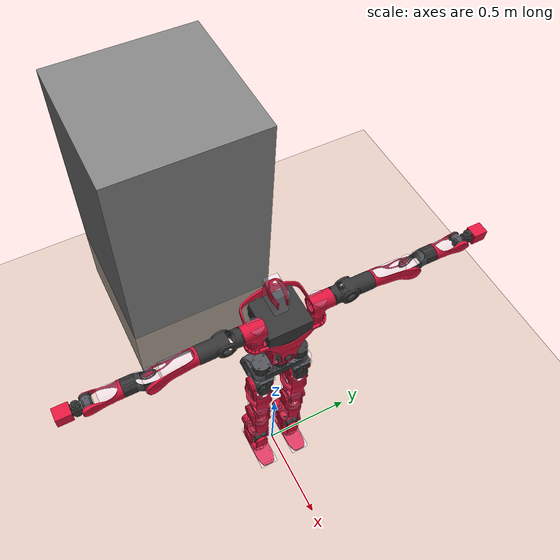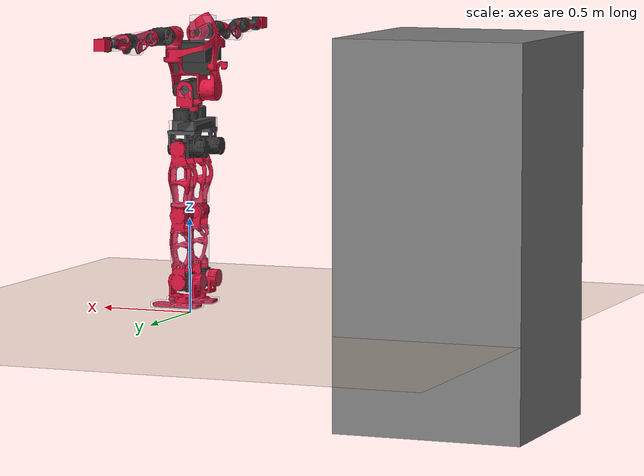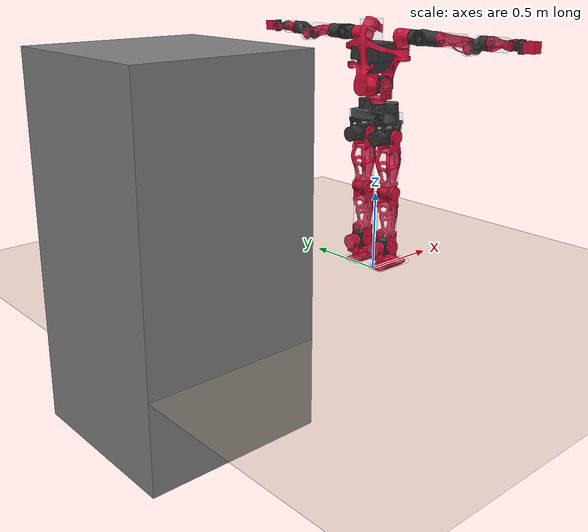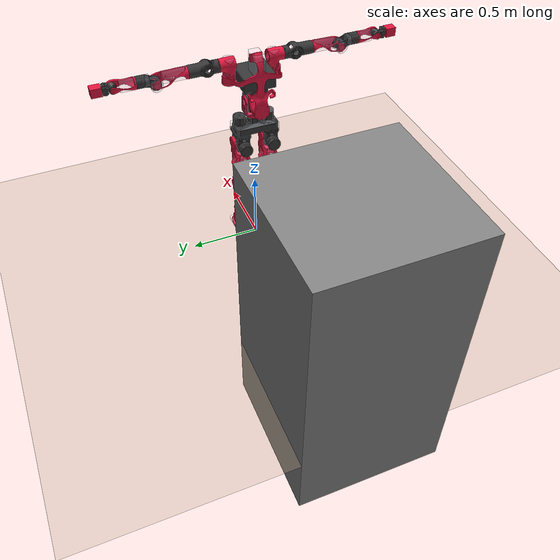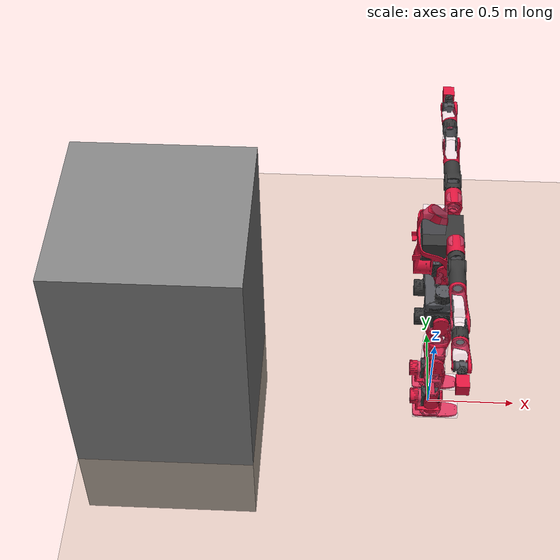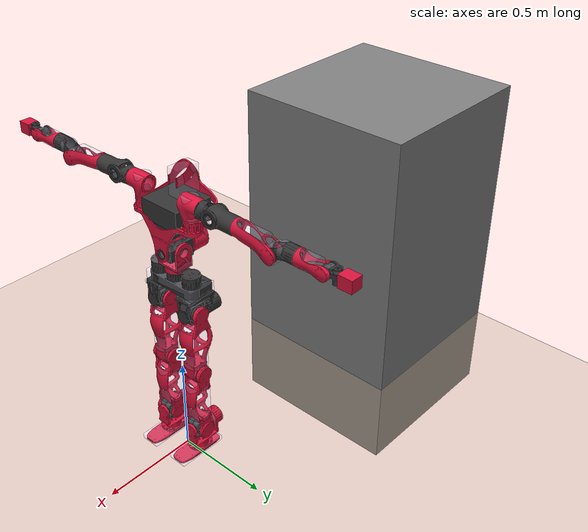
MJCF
<mujoco model="dyros_red_description">
    <compiler angle="radian" meshdir="../meshes/"/>
    <size njmax="500" nconmax="100" />

	<default>

		<joint damping="1"/>
		<default class="viz">
			<geom contype="0" conaffinity="0" group="1" type="mesh" rgba=".6 .6 .7 1"/>
		</default>

		<default class="cls">
			<geom group="2" rgba="0.79216 0.81961 0.93333 0.1"/>
		</default>

		<default class="cls_f">
			<geom group="2" rgba="0.79216 0.81961 0.93333 0.1" friction="1 0.005 0.0001"/>
		</default>

	</default>

	<option timestep='0.001' iterations="50" tolerance="1e-10" solver="Newton" jacobian="dense" cone="elliptic"/>

    <asset>
        <mesh name="Pelvis_link" file="Pelvis_link.STL" />
        <mesh name="HipRoll_R_link" file="HipRoll_R_link.STL" />
        <mesh name="HipCenter_R_Link" file="HipCenter_R_Link.STL" />
        <mesh name="Thigh_R_Link" file="Thigh_R_Link.STL" />
        <mesh name="Knee_R_Link" file="Knee_R_Link.STL" />
        <mesh name="AnkleCenter_R_Link" file="AnkleCenter_R_Link.STL" />
        <mesh name="AnkleRoll_R_Link" file="AnkleRoll_R_Link.STL" />
        <mesh name="HipRoll_L_Link" file="HipRoll_L_Link.STL" />
        <mesh name="HipCenter_L_Link" file="HipCenter_L_Link.STL" />
        <mesh name="Thigh_L_Link" file="Thigh_L_Link.STL" />
        <mesh name="Knee_L_Link" file="Knee_L_Link.STL" />
        <mesh name="AnkleCenter_L_Link" file="AnkleCenter_L_Link.STL" />
        <mesh name="AnkleRoll_L_Link" file="AnkleRoll_L_Link.STL" />
        <mesh name="waist1" file="waist1.STL" />
        <mesh name="waist2" file="waist2.STL" />
        <mesh name="upperbody" file="upperbody.STL" />
        <mesh name="R_shoulder1" file="R_shoulder1.STL" />
        <mesh name="R_shoulder2" file="R_shoulder2.STL" />
        <mesh name="R_shoulder3" file="R_shoulder3.STL" />
        <mesh name="R_arm" file="R_arm.STL" />
        <mesh name="R_elbow" file="R_elbow.STL" />
        <mesh name="R_forearm" file="R_forearm.STL" />
        <mesh name="R_wrist1" file="R_wrist1.STL" />
        <mesh name="L_shoulder1" file="L_shoulder1.STL" />
        <mesh name="L_shoulder2" file="L_shoulder2.STL" />
        <mesh name="L_shoulder3" file="L_shoulder3.STL" />
        <mesh name="L_arm" file="L_arm.STL" />
        <mesh name="L_elbow" file="L_elbow.STL" />
        <mesh name="L_forearm" file="L_forearm.STL" />
        <mesh name="L_wrist1" file="L_wrist1.STL" />
    </asset>

    <worldbody>
		<geom name="ground" type="plane" pos="0 0 0" size="2 2 .05" friction="1 0.005 0.0001" rgba="0.7 0.6 0.5 1"/>
		<geom name="box" type="box" size="0.5 0.5 1" pos="-1.5 0 0.5"/>
		<light mode='targetbodycom' target='base_link' directional='false' diffuse='.8 .8 .8' specular='0.3 0.3 0.3' pos='0 0 4.0' dir='0 0 -1'/>

        <body name="base_link" pos="0 0 1">
			<joint type="free" limited='false' damping="0" stiffness="0" armature="0"/>
            <inertial pos="-0.0099622 6.3628e-07 0.012618" quat="0.496444 0.497031 -0.503539 0.502944" mass="0.90054" diaginertia="0.0101981 0.00947498 0.00223109" />
            <geom class="viz" rgba="0.20313 0.20313 0.20313 1" mesh="Pelvis_link" />
			<geom size="0.045 0.044" pos="0 0 0.019" type="cylinder" class="cls" />
            <geom size="0.045 0.055" pos="0 0.1025 0.03" type="cylinder" class="cls" />
            <geom size="0.045 0.055" pos="0 -0.1025 0.03" type="cylinder" class="cls" />
            <geom size="0.0705 0.1525 0.025" pos="-0.0205 0 0" type="box" class="cls" />
            <body name="R_HipRoll_Link" pos="0 -0.1025 -0.1225">
                <inertial pos="-0.049575 6.7216e-07 -0.060375" quat="0.598696 0.376256 0.376257 0.598686" mass="0.46745" diaginertia="0.0027531 0.00245571 0.00106929" />
                <joint name="R_HipRoll_Joint" pos="0 0 0" axis="0 0 1" limited="true" range="-3.14 3.14" />
                <geom class="viz" rgba="0.20313 0.20313 0.20313 1" mesh="HipRoll_R_link" />
				<geom size="0.045 0.04" pos="-0.1 0 0" quat="0.707107 0 0.707107 0" type="cylinder" class="cls" />
                <geom size="0.077 0.05 0.01" pos="-0.016 0 0.085" type="box" class="cls" />
                <geom size="0.006 0.036 0.0475" pos="0.055 0 0.0475" type="box" class="cls" />
                <geom size="0.006 0.036 0.0475" pos="-0.087 0 0.0475" type="box" class="cls" />
                <body name="R_HipCenter_Link" pos="0 0 0">
                    <inertial pos="-0.006697 0.001977 6.3884e-05" quat="0.484612 0.501146 0.507244 0.506663" mass="0.37947" diaginertia="0.000743971 0.000633861 0.000564699" />
                    <joint name="R_HipCenter_Joint" pos="0 0 0" axis="1 0 0" limited="true" range="-3.14 3.14" />
                    <geom class="viz" rgba="0.20313 0.20313 0.20313 1" mesh="HipCenter_R_Link" />
					<geom size="0.05225 0.03 0.0475" pos="-0.0045 0 0" type="box" class="cls" />
                    <body name="R_Thigh_Link" pos="0 0 0">
                        <inertial pos="-0.0010688 0.00026335 -0.21805" quat="0.72325 -0.000982196 -0.0109523 0.690499" mass="1.0564" diaginertia="0.0159719 0.0157965 0.00260278" />
                        <joint name="R_Thigh_Joint" pos="0 0 0" axis="0 1 0" limited="true" range="-3.14 3.14" />
						<geom size="0.049 0.038815" pos="0 0 -0.35" quat="0.707107 0.707107 0 0" type="cylinder" class="cls" />
                        <geom size="0.06 0.10875" pos="0 0 -0.1923" type="cylinder" class="cls" />
                        <geom class="viz" rgba="0.85938 0.07813 0.23438 1" mesh="Thigh_R_Link" />
                        <body name="R_Knee_Link" pos="0 0 -0.35">
                            <inertial pos="0.0070158 -0.0019227 -0.16799" quat="0.999873 0.00580515 0.00441453 -0.0141453" mass="0.70655" diaginertia="0.00984496 0.00953182 0.00179683" />
                            <joint name="R_Knee_Joint" pos="0 0 0" axis="0 1 0" limited="true" range="-3.14 3.14" />
                            <geom class="viz" rgba="0.85938 0.07813 0.23438 1" mesh="Knee_R_Link" />
							<geom size="0.06 0.1" pos="0 0 -0.175" type="cylinder" class="cls" />
                            <body name="R_AnkleCenter_Link" pos="0 0 -0.35">
                                <inertial pos="-0.008151 0.0019259 -7.0421e-05" quat="0.49798 0.486061 0.510295 0.505332" mass="0.38954" diaginertia="0.000762715 0.000655573 0.000568523" />
                                <joint name="R_AnkleCenter_Joint" pos="0 0 0" axis="0 1 0" limited="true" range="-3.14 3.14" />
                                <geom class="viz" rgba="0.20313 0.20313 0.20313 1" mesh="AnkleCenter_R_Link" />
								<geom size="0.05225 0.03 0.0475" pos="-0.0045 0 0" type="box" class="cls" />
                                <body name="R_AnkleRoll_Link" pos="0 0 0">
                                    <inertial pos="-0.0030635 9.3328e-08 -0.086853" quat="0.356619 0.610598 0.610576 0.356636" mass="0.98346" diaginertia="0.0067953 0.00592353 0.00221167" />
                                    <joint name="R_AnkleRoll_Joint" pos="0 0 0" axis="1 0 0" limited="true" range="-3.14 3.14" />
                                    <geom class="viz" rgba="0.85938 0.07813 0.23438 1" mesh="AnkleRoll_R_Link" />
									<geom size="0.13 0.05 0.0135" pos="0.0317 0 -0.1233" type="box" class="cls_f"/>
                                    <geom size="0.045 0.03125" pos="-0.08875 0 0" quat="0.707107 0 -0.707107 0" type="cylinder" class="cls" />
                                </body>
                            </body>
                        </body>
                    </body>
                </body>
            </body>
            <body name="L_HipRoll_Link" pos="0 0.1025 -0.1225">
                <inertial pos="-0.049575 6.7355e-07 -0.060375" quat="0.598696 0.376256 0.376257 0.598686" mass="0.46745" diaginertia="0.0027531 0.00245571 0.00106929" />
                <joint name="L_HipRoll_Joint" pos="0 0 0" axis="0 0 1" limited="true" range="-3.14 3.14" />
                <geom class="viz" rgba="0.20313 0.20313 0.20313 1" mesh="HipRoll_L_Link" />
				<geom size="0.045 0.04" pos="-0.1 0 0" quat="0.707107 0 0.707107 0" type="cylinder" class="cls" />
                <geom size="0.077 0.05 0.01" pos="-0.016 0 0.085" type="box" class="cls" />
                <geom size="0.006 0.036 0.0475" pos="0.055 0 0.0475" type="box" class="cls" />
                <geom size="0.006 0.036 0.0475" pos="-0.087 0 0.0475" type="box" class="cls" />
                <body name="L_HipCenter_Link" pos="0 0 0">
                    <inertial pos="-0.0066954 -0.001977 6.344e-05" quat="0.506746 0.507195 0.501082 0.484643" mass="0.37947" diaginertia="0.000743981 0.00063388 0.000564688" />
                    <joint name="L_HipCenter_Joint" pos="0 0 0" axis="1 0 0" limited="true" range="-3.14 3.14" />
                    <geom class="viz" rgba="0.20313 0.20313 0.20313 1" mesh="HipCenter_L_Link" />
					<geom size="0.05225 0.03 0.0475" pos="-0.0045 0 0" type="box" class="cls" />
                    <body name="L_Thigh_Link" pos="0 0 0">
                        <inertial pos="-0.0010686 -0.00037691 -0.21804" quat="0.703666 -0.0106801 -0.00144767 0.710449" mass="1.0564" diaginertia="0.0159713 0.0157969 0.00260304" />
                        <joint name="L_Thigh_Joint" pos="0 0 0" axis="0 1 0" limited="true" range="-3.14 3.14" />
                        <geom class="viz" rgba="0.85938 0.07813 0.23438 1" mesh="Thigh_L_Link" />
						<geom size="0.049 0.038815" pos="0 0 -0.35" quat="0.707107 0.707107 0 0" type="cylinder" class="cls" />
                        <geom size="0.06 0.10875" pos="0 0 -0.1923" type="cylinder" class="cls" />
                        <body name="L_Knee_Link" pos="0 0 -0.35">
                            <inertial pos="0.0070122 0.001804 -0.16799" quat="0.999796 -0.00566183 0.0044117 0.0188787" mass="0.70655" diaginertia="0.00984504 0.00953107 0.00179718" />
                            <joint name="L_Knee_Joint" pos="0 0 0" axis="0 1 0" limited="true" range="-3.14 3.14" />
                            <geom class="viz" rgba="0.85938 0.07813 0.23438 1" mesh="Knee_L_Link" />
							<geom size="0.06 0.1" pos="0 0 -0.175" type="cylinder" class="cls" />
                            <body name="L_AnkleCenter_Link" pos="0 0 -0.35">
                                <inertial pos="-0.008176 -0.0019259 -6.7326e-05" quat="0.50517 0.511569 0.486378 0.496526" mass="0.38954" diaginertia="0.000762582 0.000655331 0.000568577" />
                                <joint name="L_AnkleCenter_Joint" pos="0 0 0" axis="0 1 0" limited="true" range="-3.14 3.14" />
                                <geom class="viz" rgba="0.20313 0.20313 0.20313 1" mesh="AnkleCenter_L_Link" />
								<geom size="0.05225 0.03 0.0475" pos="-0.0045 0 0" type="box" class="cls" />
                                <body name="L_AnkleRoll_Link" pos="0 0 0">
                                    <inertial pos="-0.0030635 9.3328e-08 -0.086853" quat="0.356619 0.610598 0.610576 0.356636" mass="0.98346" diaginertia="0.0067953 0.00592353 0.00221167" />
                                    <joint name="L_AnkleRoll_Joint" pos="0 0 0" axis="1 0 0" limited="true" range="-3.14 3.14" />
                                    <geom class="viz" rgba="0.85938 0.07813 0.23438 1" mesh="AnkleRoll_L_Link" />
									<geom size="0.13 0.05 0.0135" pos="0.0317 0 -0.1233" type="box" class="cls_f"/>
                                    <geom size="0.045 0.03125" pos="-0.08875 0 0" quat="0.707107 0 -0.707107 0" type="cylinder" class="cls" />
                                </body>
                            </body>
                        </body>
                    </body>
                </body>
            </body>
            <body name="Waist1_Link" pos="0 0 0.18">
                <inertial pos="0 0 -0.04182" quat="0.707107 0.707107 0 0" mass="0.74235" diaginertia="0.00325468 0.00270188 0.00165546" />
                <joint name="Waist1_Joint" pos="0 0 0" axis="0 0 1" limited="true" range="-2.094 2.094" />
                <geom class="viz" rgba="0.85938 0.07813 0.23438 1" mesh="waist1" />
				<geom size="0.05 0.014" pos="0 0 -0.098" type="cylinder" rgba="0.85938 0.07813 0.23438 1" />
                <geom size="0.047 0.065 0.005" pos="0 0 -0.081" type="box" class="cls" />
                <geom size="0.047 0.005 0.0455" pos="0 0.06 -0.0405" type="box" class="cls" />
                <geom size="0.047 0.005 0.0455" pos="0 -0.06 -0.0405" type="box" class="cls" />
                <body name="Waist2_Link" pos="0 0 0">
                    <inertial pos="-0.00065 0 1e-05" quat="0 0.707107 0 0.707107" mass="3.27104" diaginertia="0.00602216 0.0049746 0.00462286" />
                    <joint name="Waist2_Joint" pos="0 0 0" axis="0 1 0" limited="true" range="-2.094 2.094" />
                    <geom class="viz" rgba="0.20313 0.20313 0.20313 1" mesh="waist2" />
					<geom size="0.055 0.05" quat="0.707107 0.707107 0 0" type="cylinder" class="cls" />
                    <geom size="0.05 0.05 0.03" pos="0.02 0 0" type="box" class="cls" />
                    <geom size="0.045 0.05 0.0455" pos="-0.02 0 0" type="box" class="cls" />
                    <body name="Upperbody_Link" pos="0 0 0">
                        <inertial pos="-0.04733 0 0.16266" quat="0.991857 0 -0.127356 0" mass="16.4339" diaginertia="0.274087 0.242243 0.173295" />
                        <joint name="Upperbody_Joint" pos="0 0 0" axis="-1 0 0" limited="true" range="-2.094 2.094" />
                        <geom class="viz" rgba="0.85938 0.07813 0.23438 1" mesh="upperbody" />
						<geom size="0.105 0.11 0.05" pos="-0.03 0 0.2" type="box" rgba="0.20313 0.20313 0.20313 1" />
                        <geom size="0.105 0.055 0.035" pos="-0.03 0 0.115" type="box" rgba="0.20313 0.20313 0.20313 1" />
                        <geom size="0.06 0.035 0.07" pos="-0.08 0 0.32" type="box" class="cls" />
                        <geom size="0.054 0.045" pos="-0.115 0 0" quat="0.707107 0 0.707107 0" type="cylinder" class="cls" />
                        <geom size="0.04 0.035" pos="0.023 0.154 0.185" type="cylinder" class="cls" />
                        <geom size="0.04 0.035" pos="0.023 -0.154 0.185" type="cylinder" class="cls" />
                        <body name="R_Shoulder1_Link" pos="0.023 -0.154 0.2275">
                            <inertial pos="-3e-05 -0.00397 0.06029" quat="0.678735 -0.0962618 0.0973029 0.721516" mass="1.6762" diaginertia="0.00195894 0.0019255 0.00165624" />
                            <joint name="R_Shoulder1_Joint" pos="0 0 0" axis="0 0 1" limited="true" range="-1.54 2.09" />
                            <geom class="viz" rgba="0.85938 0.07813 0.23438 1" mesh="R_shoulder1" />
							<geom size="0.04 0.055" pos="0 0 0.05" type="cylinder" class="cls" />
                            <body name="R_Shoulder2_Link" pos="0 -0.0341 0.065">
                                <inertial pos="0.00107 -0.0491 -1e-05" quat="0.51724 0.479014 -0.520322 0.481948" mass="0.4016" diaginertia="0.00106758 0.000992068 0.000622085" />
                                <joint name="R_Shoulder2_Joint" pos="0 0 0" axis="0 -1 0" limited="true" range="-3.14159 3.14159" />
                                <geom class="viz" rgba="0.20313 0.20313 0.20313 1" mesh="R_shoulder2" />
								<geom size="0.04 0.025" pos="0 -0.04 0" quat="0.707107 0.707107 0 0" type="cylinder" class="cls" />
                                <body name="R_Shoulder3_Link" pos="0 -0.115 0">
                                    <inertial pos="0.00262 -0.04826 0.00023" quat="0.708306 0.705235 0.0242641 0.0189048" mass="2.90141" diaginertia="0.00846389 0.00829694 0.00247136" />
                                    <joint name="R_Shoulder3_Joint" pos="0 0 0" axis="-1 0 0" limited="true" range="-1.9199 1.9199" />
                                    <geom class="viz" rgba="0.20313 0.20313 0.20313 1"  mesh="R_shoulder3" />
									<geom size="0.04 0.06" pos="0 -0.06 0" quat="0.707107 0.707107 0 0" type="cylinder" class="cls" />
                                    <body name="R_Armlink_Link" pos="0 -0.1281 0">
                                        <inertial pos="0.01896 -0.11642 -0.0119" quat="0.503607 0.520285 -0.555379 0.408947" mass="0.43517" diaginertia="0.00318243 0.00291909 0.000624466" />
                                        <joint name="R_Armlink_Joint" pos="0 0 0" axis="0 -1 0" limited="true" range="-3.14159 3.14159" />
										<geom size="0.04 0.08" pos="0 -0.08 0" quat="0.707107 0.707107 0 0" type="cylinder" class="cls" />
                                        <geom class="viz" rgba="0.85938 0.07813 0.23438 1" mesh="R_arm" />
                                        <body name="R_Elbow_Link" pos="0 -0.207 -0.0325">
                                            <inertial pos="-0.00136 -0.05256 0.01764" quat="0.517663 0.708306 -0.39581 0.27141" mass="1.96511" diaginertia="0.0065354 0.00631431 0.00138011" />
                                            <joint name="R_Elbow_Joint" pos="0 0 0" axis="1 0 0" limited="true" range="-2.967 3.14159" />
											<geom size="0.04 0.04" pos="0 -0.08 0.0325" quat="0.707107 0.707107 0 0" type="cylinder" class="cls" />
                                            <geom size="0.04 0.04" quat="0.707107 0 0.707107 0" type="cylinder" class="cls" />
                                            <geom class="viz" rgba="0.20313 0.20313 0.20313 1" mesh="R_elbow" />
                                            <body name="R_Forearm_Link" pos="0 -0.1244 0.0325">
                                                <inertial pos="0.01426 -0.0767 0.00033" quat="0.55187 0.502809 -0.506596 0.431257" mass="0.30234" diaginertia="0.00126963 0.00106149 0.000388409" />
                                                <joint name="R_Forearm_Joint" pos="0 0 0" axis="0 -1 0" limited="true" range="-3.14159 3.14159" />
												<geom size="0.04 0.05" pos="0 -0.05 0" quat="0.707107 0.707107 0 0" type="cylinder" class="cls" />
                                                <geom size="0.025 0.04" pos="0 -0.1451 0" quat="0.707107 0 0.707107 0" type="cylinder" class="cls" />
                                                <geom class="viz" rgba="0.85938 0.07813 0.23438 1" mesh="R_forearm" />
                                                <body name="R_Wrist1_Link" pos="0 -0.1451 0">
                                                    <inertial pos="-0.00158 -0.02153 3e-05" quat="0.521107 0.474698 -0.525252 0.476676" mass="0.70923" diaginertia="0.00068319 0.000650504 0.000394066" />
                                                    <joint name="R_Wrist1_Joint" pos="0 0 0" axis="1 0 0" limited="true" range="-3.14159 3.14159" />
													<geom size="0.02 0.03" pos="0 -0.046 0" type="cylinder" class="cls" />
                                                    <geom class="viz" rgba="0.20313 0.20313 0.20313 1" mesh="R_wrist1" />
                                                    <body name="R_Wrist2_Link" pos="0 -0.046 0">
                                                        <inertial pos="0.00063 -0.0536 0.00178" quat="0.707107 0.707107 0 0" mass="1" diaginertia="0.00086545 0.000820823 0.000696917" />
                                                        <joint name="R_Wrist2_Joint" pos="0 0 0" axis="0 0 1" limited="true" range="-2.094 2.094" />
                                                        <geom size="0.03 0.035 0.03" pos="0 -0.057 0" type="box" rgba="0.85938 0.07813 0.23438 1" />
                                                    </body>
                                                </body>
                                            </body>
                                        </body>
                                    </body>
                                </body>
                            </body>
                        </body>
                        <body name="L_Shoulder1_Link" pos="0.023 0.154 0.2275">
                            <inertial pos="-3e-05 0.00397 0.06029" quat="0.678735 0.0962618 -0.0973029 0.721516" mass="1.6762" diaginertia="0.00195894 0.0019255 0.00165624" />
                            <joint name="L_Shoulder1_Joint" pos="0 0 0" axis="0 0 1" limited="true" range="-2.09 1.54" />
                            <geom class="viz" rgba="0.85938 0.07813 0.23438 1" mesh="L_shoulder1" />
							<geom size="0.04 0.055" pos="0 0 0.05" type="cylinder" class="cls" />
                            <body name="L_Shoulder2_Link" pos="0 0.0341 0.065">
                                <inertial pos="0.00107 0.0491 -1e-05" quat="0.479014 0.51724 -0.481948 0.520322" mass="0.4016" diaginertia="0.00106758 0.000992068 0.000622085" />
                                <joint name="L_Shoulder2_Joint" pos="0 0 0" axis="0 1 0" limited="true" range="-3.14159 3.14159" />
                                <geom class="viz" rgba="0.20313 0.20313 0.20313 1" mesh="L_shoulder2" />
								<geom size="0.04 0.025" pos="0 0.04 0" quat="0.707107 0.707107 0 0" type="cylinder" class="cls" />
                                <body name="L_Shoulder3_Link" pos="0 0.115 0">
                                    <inertial pos="0.00262 0.04826 0.00023" quat="0.705235 0.708306 -0.0189048 -0.0242641" mass="2.90141" diaginertia="0.00846389 0.00829694 0.00247136" />
                                    <joint name="L_Shoulder3_Joint" pos="0 0 0" axis="-1 0 0" limited="true" range="-1.9199 1.9199" />
									<geom size="0.04 0.06" pos="0 0.06 0" quat="0.707107 0.707107 0 0" type="cylinder" class="cls" />
                                    <geom class="viz" rgba="0.20313 0.20313 0.20313 1"  mesh="L_shoulder3" />
                                    <body name="L_Armlink_Link" pos="0 0.1281 0">
                                        <inertial pos="0.01896 0.11642 -0.0119" quat="0.520285 0.503607 -0.408947 0.555379" mass="0.43517" diaginertia="0.00318243 0.00291909 0.000624466" />
                                        <joint name="L_Armlink_Joint" pos="0 0 0" axis="0 1 0" limited="true" range="-3.14159 3.14159" />
										<geom size="0.04 0.08" pos="0 0.08 0" quat="0.707107 0.707107 0 0" type="cylinder" class="cls" />
                                        <geom class="viz" rgba="0.85938 0.07813 0.23438 1" mesh="L_arm" />
                                        <body name="L_Elbow_Link" pos="0 0.207 -0.0325">
                                            <inertial pos="-0.00136 0.05256 0.01764" quat="0.708306 0.517663 -0.27141 0.39581" mass="1.96511" diaginertia="0.0065354 0.00631431 0.00138011" />
                                            <joint name="L_Elbow_Joint" pos="0 0 0" axis="1 0 0" limited="true" range="-3.14159 2.8" />
											<geom size="0.04 0.04" pos="0 0.08 0.0325" quat="0.707107 0.707107 0 0" type="cylinder" class="cls" />
                                            <geom size="0.04 0.04" quat="0.707107 0 0.707107 0" type="cylinder" class="cls" />
                                            <geom class="viz" rgba="0.20313 0.20313 0.20313 1" mesh="L_elbow" />
                                            <body name="L_Forearm_Link" pos="0 0.1244 0.0325">
                                                <inertial pos="0.01426 0.0767 0.00033" quat="0.502809 0.55187 -0.431257 0.506596" mass="0.30234" diaginertia="0.00126963 0.00106149 0.000388409" />
                                                <joint name="L_Forearm_Joint" pos="0 0 0" axis="0 1 0" limited="true" range="-3.14159 3.14159" />
                                                <geom class="viz" rgba="0.85938 0.07813 0.23438 1" mesh="L_forearm" />
												<geom size="0.04 0.05" pos="0 0.05 0" quat="0.707107 0.707107 0 0" type="cylinder" class="cls" />
                                                <geom size="0.025 0.04" pos="0 0.1451 0" quat="0.707107 0 0.707107 0" type="cylinder" class="cls" />
                                                <body name="L_Wrist1_Link" pos="0 0.1451 0">
                                                    <inertial pos="-0.00158 0.02153 3e-05" quat="0.474698 0.521107 -0.476676 0.525252" mass="0.70923" diaginertia="0.00068319 0.000650504 0.000394066" />
                                                    <joint name="L_Wrist1_Joint" pos="0 0 0" axis="1 0 0" limited="true" range="-3.14159 3.14159" />
                                                    <geom class="viz" rgba="0.20313 0.20313 0.20313 1" mesh="L_wrist1" />
													<geom size="0.02 0.03" pos="0 0.046 0" type="cylinder" class="cls" />
                                                    <body name="L_Wrist2_Link" pos="0 0.046 0">
                                                        <inertial pos="0.00063 0.0536 0.00178" quat="0.707107 0.707107 0 0" mass="1" diaginertia="0.00086545 0.000820823 0.000696917" />
                                                        <joint name="L_Wrist2_Joint" pos="0 0 0" axis="0 0 1" limited="true" range="-2.094 2.094" />
                                                        <geom size="0.03 0.035 0.03" pos="0 0.057 0" type="box" rgba="0.85938 0.07813 0.23438 1" />
                                                    </body>
                                                </body>
                                            </body>
                                        </body>
                                    </body>
                                </body>
                            </body>
                        </body>
                    </body>
                </body>
            </body>
        </body>
    </worldbody>

	<actuator>

		<motor name="MR0" joint="R_HipRoll_Joint"/>
		<motor name="MR1" joint="R_HipCenter_Joint"/>
		<motor name="MR2" joint="R_Thigh_Joint"/>
		<motor name="MR3" joint="R_Knee_Joint"/>
		<motor name="MR4" joint="R_AnkleCenter_Joint"/>
		<motor name="MR5" joint="R_AnkleRoll_Joint"/>

		<motor name="ML0" joint="L_HipRoll_Joint"/>
		<motor name="ML1" joint="L_HipCenter_Joint"/>
		<motor name="ML2" joint="L_Thigh_Joint"/>
		<motor name="ML3" joint="L_Knee_Joint"/>
		<motor name="ML4" joint="L_AnkleCenter_Joint"/>
		<motor name="ML5" joint="L_AnkleRoll_Joint"/>

		<motor name="MW1" joint="Waist1_Joint"/>
		<motor name="MW2" joint="Waist2_Joint"/>
		<motor name="MB" joint="Upperbody_Joint"/>

		<motor name="MUR0" joint="R_Shoulder1_Joint"/>
		<motor name="MUR1" joint="R_Shoulder2_Joint"/>
		<motor name="MUR2" joint="R_Shoulder3_Joint"/>
		<motor name="MUR3" joint="R_Armlink_Joint"/>
		<motor name="MUR4" joint="R_Elbow_Joint"/>
		<motor name="MUR5" joint="R_Forearm_Joint"/>
		<motor name="MUR6" joint="R_Wrist1_Joint"/>
		<motor name="MUR7" joint="R_Wrist2_Joint"/>

		<motor name="MUL0" joint="L_Shoulder1_Joint"/>
		<motor name="MUL1" joint="L_Shoulder2_Joint"/>
		<motor name="MUL2" joint="L_Shoulder3_Joint"/>
		<motor name="MUL3" joint="L_Armlink_Joint"/>
		<motor name="MUL4" joint="L_Elbow_Joint"/>
		<motor name="MUL5" joint="L_Forearm_Joint"/>
		<motor name="MUL6" joint="L_Wrist1_Joint"/>
		<motor name="MUL7" joint="L_Wrist2_Joint"/>

	</actuator>
</mujoco>
